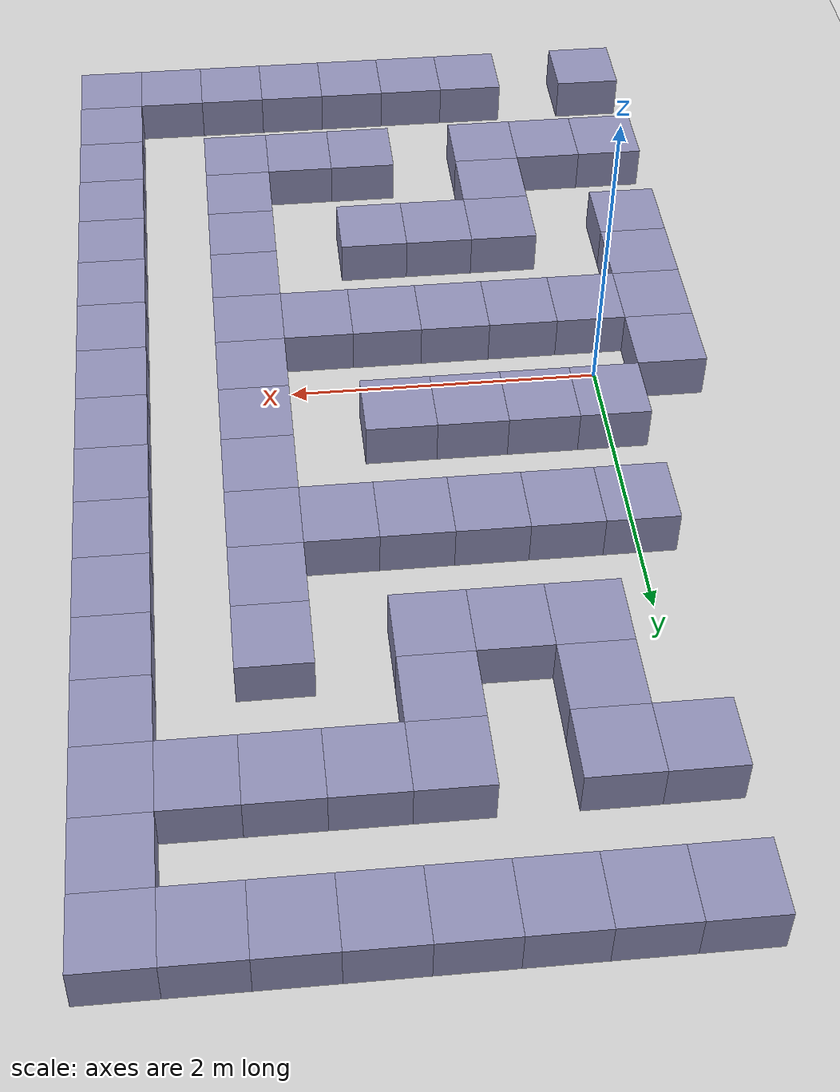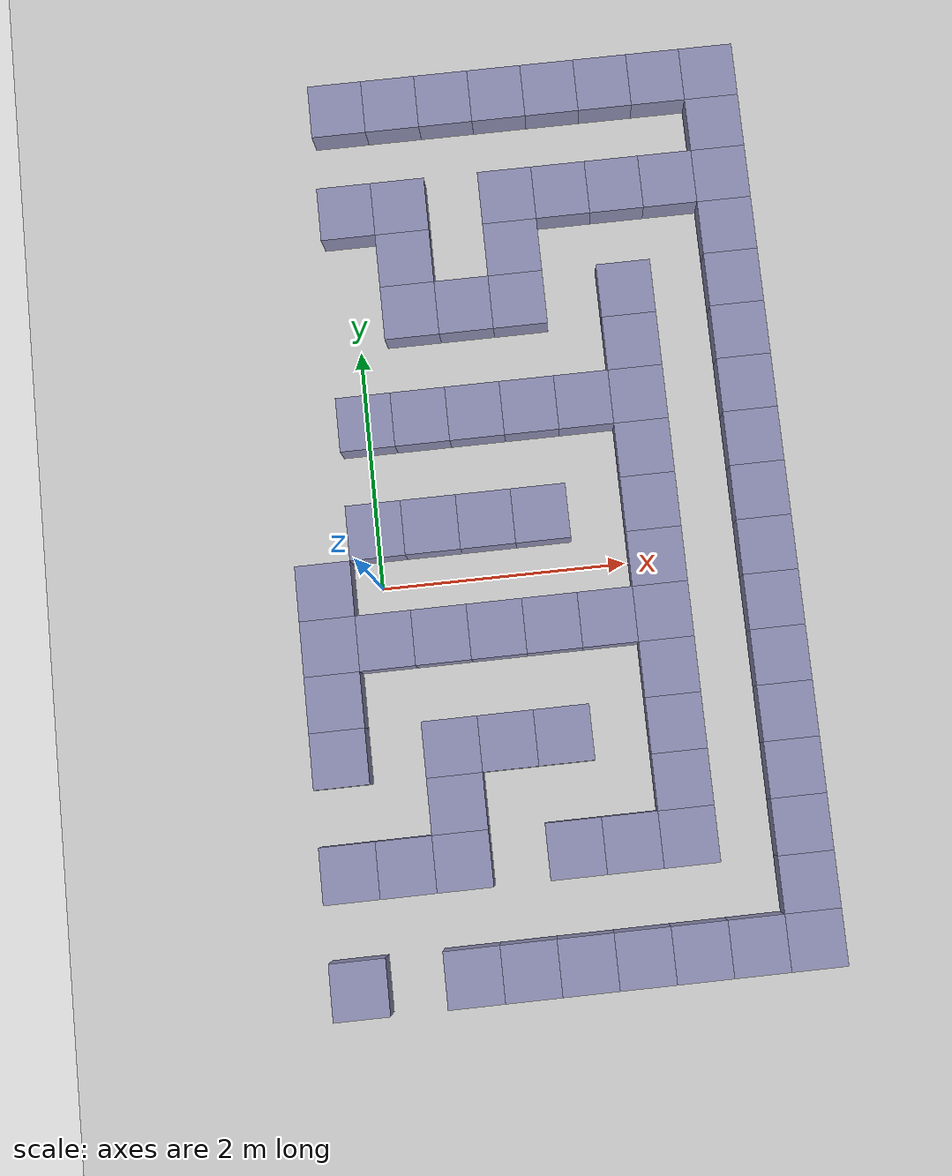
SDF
<sdf version="1.6">
 <world name="maze">
  <include><uri>model://ground_plane</uri></include>
  <include><uri>model://sun</uri></include>
  <model name="mw9">
   <static>true</static>
   <pose>0.0000 4.0500 0.1500 0 0 0</pose>
   <link name="link">
    <collision name="c"><geometry><box><size>0.45 0.45 0.3</size></box></geometry></collision>
    <visual name="v">
     <geometry><box><size>0.45 0.45 0.3</size></box></geometry>
     <material><ambient>0.55 0.55 0.7 1</ambient></material>
    </visual>
   </link>
  </model>
  <model name="mw10">
   <static>true</static>
   <pose>0.4500 4.0500 0.1500 0 0 0</pose>
   <link name="link">
    <collision name="c"><geometry><box><size>0.45 0.45 0.3</size></box></geometry></collision>
    <visual name="v">
     <geometry><box><size>0.45 0.45 0.3</size></box></geometry>
     <material><ambient>0.55 0.55 0.7 1</ambient></material>
    </visual>
   </link>
  </model>
  <model name="mw11">
   <static>true</static>
   <pose>0.9000 4.0500 0.1500 0 0 0</pose>
   <link name="link">
    <collision name="c"><geometry><box><size>0.45 0.45 0.3</size></box></geometry></collision>
    <visual name="v">
     <geometry><box><size>0.45 0.45 0.3</size></box></geometry>
     <material><ambient>0.55 0.55 0.7 1</ambient></material>
    </visual>
   </link>
  </model>
  <model name="mw12">
   <static>true</static>
   <pose>1.3500 4.0500 0.1500 0 0 0</pose>
   <link name="link">
    <collision name="c"><geometry><box><size>0.45 0.45 0.3</size></box></geometry></collision>
    <visual name="v">
     <geometry><box><size>0.45 0.45 0.3</size></box></geometry>
     <material><ambient>0.55 0.55 0.7 1</ambient></material>
    </visual>
   </link>
  </model>
  <model name="mw13">
   <static>true</static>
   <pose>1.8000 4.0500 0.1500 0 0 0</pose>
   <link name="link">
    <collision name="c"><geometry><box><size>0.45 0.45 0.3</size></box></geometry></collision>
    <visual name="v">
     <geometry><box><size>0.45 0.45 0.3</size></box></geometry>
     <material><ambient>0.55 0.55 0.7 1</ambient></material>
    </visual>
   </link>
  </model>
  <model name="mw14">
   <static>true</static>
   <pose>2.2500 4.0500 0.1500 0 0 0</pose>
   <link name="link">
    <collision name="c"><geometry><box><size>0.45 0.45 0.3</size></box></geometry></collision>
    <visual name="v">
     <geometry><box><size>0.45 0.45 0.3</size></box></geometry>
     <material><ambient>0.55 0.55 0.7 1</ambient></material>
    </visual>
   </link>
  </model>
  <model name="mw15">
   <static>true</static>
   <pose>2.7000 4.0500 0.1500 0 0 0</pose>
   <link name="link">
    <collision name="c"><geometry><box><size>0.45 0.45 0.3</size></box></geometry></collision>
    <visual name="v">
     <geometry><box><size>0.45 0.45 0.3</size></box></geometry>
     <material><ambient>0.55 0.55 0.7 1</ambient></material>
    </visual>
   </link>
  </model>
  <model name="mw16">
   <static>true</static>
   <pose>3.1500 4.0500 0.1500 0 0 0</pose>
   <link name="link">
    <collision name="c"><geometry><box><size>0.45 0.45 0.3</size></box></geometry></collision>
    <visual name="v">
     <geometry><box><size>0.45 0.45 0.3</size></box></geometry>
     <material><ambient>0.55 0.55 0.7 1</ambient></material>
    </visual>
   </link>
  </model>
  <model name="mw19">
   <static>true</static>
   <pose>3.1500 3.6000 0.1500 0 0 0</pose>
   <link name="link">
    <collision name="c"><geometry><box><size>0.45 0.45 0.3</size></box></geometry></collision>
    <visual name="v">
     <geometry><box><size>0.45 0.45 0.3</size></box></geometry>
     <material><ambient>0.55 0.55 0.7 1</ambient></material>
    </visual>
   </link>
  </model>
  <model name="mw25">
   <static>true</static>
   <pose>0.0000 3.1500 0.1500 0 0 0</pose>
   <link name="link">
    <collision name="c"><geometry><box><size>0.45 0.45 0.3</size></box></geometry></collision>
    <visual name="v">
     <geometry><box><size>0.45 0.45 0.3</size></box></geometry>
     <material><ambient>0.55 0.55 0.7 1</ambient></material>
    </visual>
   </link>
  </model>
  <model name="mw26">
   <static>true</static>
   <pose>0.4500 3.1500 0.1500 0 0 0</pose>
   <link name="link">
    <collision name="c"><geometry><box><size>0.45 0.45 0.3</size></box></geometry></collision>
    <visual name="v">
     <geometry><box><size>0.45 0.45 0.3</size></box></geometry>
     <material><ambient>0.55 0.55 0.7 1</ambient></material>
    </visual>
   </link>
  </model>
  <model name="mw27">
   <static>true</static>
   <pose>1.3500 3.1500 0.1500 0 0 0</pose>
   <link name="link">
    <collision name="c"><geometry><box><size>0.45 0.45 0.3</size></box></geometry></collision>
    <visual name="v">
     <geometry><box><size>0.45 0.45 0.3</size></box></geometry>
     <material><ambient>0.55 0.55 0.7 1</ambient></material>
    </visual>
   </link>
  </model>
  <model name="mw28">
   <static>true</static>
   <pose>1.8000 3.1500 0.1500 0 0 0</pose>
   <link name="link">
    <collision name="c"><geometry><box><size>0.45 0.45 0.3</size></box></geometry></collision>
    <visual name="v">
     <geometry><box><size>0.45 0.45 0.3</size></box></geometry>
     <material><ambient>0.55 0.55 0.7 1</ambient></material>
    </visual>
   </link>
  </model>
  <model name="mw29">
   <static>true</static>
   <pose>2.2500 3.1500 0.1500 0 0 0</pose>
   <link name="link">
    <collision name="c"><geometry><box><size>0.45 0.45 0.3</size></box></geometry></collision>
    <visual name="v">
     <geometry><box><size>0.45 0.45 0.3</size></box></geometry>
     <material><ambient>0.55 0.55 0.7 1</ambient></material>
    </visual>
   </link>
  </model>
  <model name="mw30">
   <static>true</static>
   <pose>2.7000 3.1500 0.1500 0 0 0</pose>
   <link name="link">
    <collision name="c"><geometry><box><size>0.45 0.45 0.3</size></box></geometry></collision>
    <visual name="v">
     <geometry><box><size>0.45 0.45 0.3</size></box></geometry>
     <material><ambient>0.55 0.55 0.7 1</ambient></material>
    </visual>
   </link>
  </model>
  <model name="mw31">
   <static>true</static>
   <pose>3.1500 3.1500 0.1500 0 0 0</pose>
   <link name="link">
    <collision name="c"><geometry><box><size>0.45 0.45 0.3</size></box></geometry></collision>
    <visual name="v">
     <geometry><box><size>0.45 0.45 0.3</size></box></geometry>
     <material><ambient>0.55 0.55 0.7 1</ambient></material>
    </visual>
   </link>
  </model>
  <model name="mw35">
   <static>true</static>
   <pose>0.4500 2.7000 0.1500 0 0 0</pose>
   <link name="link">
    <collision name="c"><geometry><box><size>0.45 0.45 0.3</size></box></geometry></collision>
    <visual name="v">
     <geometry><box><size>0.45 0.45 0.3</size></box></geometry>
     <material><ambient>0.55 0.55 0.7 1</ambient></material>
    </visual>
   </link>
  </model>
  <model name="mw36">
   <static>true</static>
   <pose>1.3500 2.7000 0.1500 0 0 0</pose>
   <link name="link">
    <collision name="c"><geometry><box><size>0.45 0.45 0.3</size></box></geometry></collision>
    <visual name="v">
     <geometry><box><size>0.45 0.45 0.3</size></box></geometry>
     <material><ambient>0.55 0.55 0.7 1</ambient></material>
    </visual>
   </link>
  </model>
  <model name="mw37">
   <static>true</static>
   <pose>3.1500 2.7000 0.1500 0 0 0</pose>
   <link name="link">
    <collision name="c"><geometry><box><size>0.45 0.45 0.3</size></box></geometry></collision>
    <visual name="v">
     <geometry><box><size>0.45 0.45 0.3</size></box></geometry>
     <material><ambient>0.55 0.55 0.7 1</ambient></material>
    </visual>
   </link>
  </model>
  <model name="mw46">
   <static>true</static>
   <pose>0.4500 2.2500 0.1500 0 0 0</pose>
   <link name="link">
    <collision name="c"><geometry><box><size>0.45 0.45 0.3</size></box></geometry></collision>
    <visual name="v">
     <geometry><box><size>0.45 0.45 0.3</size></box></geometry>
     <material><ambient>0.55 0.55 0.7 1</ambient></material>
    </visual>
   </link>
  </model>
  <model name="mw47">
   <static>true</static>
   <pose>0.9000 2.2500 0.1500 0 0 0</pose>
   <link name="link">
    <collision name="c"><geometry><box><size>0.45 0.45 0.3</size></box></geometry></collision>
    <visual name="v">
     <geometry><box><size>0.45 0.45 0.3</size></box></geometry>
     <material><ambient>0.55 0.55 0.7 1</ambient></material>
    </visual>
   </link>
  </model>
  <model name="mw48">
   <static>true</static>
   <pose>1.3500 2.2500 0.1500 0 0 0</pose>
   <link name="link">
    <collision name="c"><geometry><box><size>0.45 0.45 0.3</size></box></geometry></collision>
    <visual name="v">
     <geometry><box><size>0.45 0.45 0.3</size></box></geometry>
     <material><ambient>0.55 0.55 0.7 1</ambient></material>
    </visual>
   </link>
  </model>
  <model name="mw49">
   <static>true</static>
   <pose>2.2500 2.2500 0.1500 0 0 0</pose>
   <link name="link">
    <collision name="c"><geometry><box><size>0.45 0.45 0.3</size></box></geometry></collision>
    <visual name="v">
     <geometry><box><size>0.45 0.45 0.3</size></box></geometry>
     <material><ambient>0.55 0.55 0.7 1</ambient></material>
    </visual>
   </link>
  </model>
  <model name="mw50">
   <static>true</static>
   <pose>3.1500 2.2500 0.1500 0 0 0</pose>
   <link name="link">
    <collision name="c"><geometry><box><size>0.45 0.45 0.3</size></box></geometry></collision>
    <visual name="v">
     <geometry><box><size>0.45 0.45 0.3</size></box></geometry>
     <material><ambient>0.55 0.55 0.7 1</ambient></material>
    </visual>
   </link>
  </model>
  <model name="mw53">
   <static>true</static>
   <pose>2.2500 1.8000 0.1500 0 0 0</pose>
   <link name="link">
    <collision name="c"><geometry><box><size>0.45 0.45 0.3</size></box></geometry></collision>
    <visual name="v">
     <geometry><box><size>0.45 0.45 0.3</size></box></geometry>
     <material><ambient>0.55 0.55 0.7 1</ambient></material>
    </visual>
   </link>
  </model>
  <model name="mw54">
   <static>true</static>
   <pose>3.1500 1.8000 0.1500 0 0 0</pose>
   <link name="link">
    <collision name="c"><geometry><box><size>0.45 0.45 0.3</size></box></geometry></collision>
    <visual name="v">
     <geometry><box><size>0.45 0.45 0.3</size></box></geometry>
     <material><ambient>0.55 0.55 0.7 1</ambient></material>
    </visual>
   </link>
  </model>
  <model name="mw63">
   <static>true</static>
   <pose>0.0000 1.3500 0.1500 0 0 0</pose>
   <link name="link">
    <collision name="c"><geometry><box><size>0.45 0.45 0.3</size></box></geometry></collision>
    <visual name="v">
     <geometry><box><size>0.45 0.45 0.3</size></box></geometry>
     <material><ambient>0.55 0.55 0.7 1</ambient></material>
    </visual>
   </link>
  </model>
  <model name="mw64">
   <static>true</static>
   <pose>0.4500 1.3500 0.1500 0 0 0</pose>
   <link name="link">
    <collision name="c"><geometry><box><size>0.45 0.45 0.3</size></box></geometry></collision>
    <visual name="v">
     <geometry><box><size>0.45 0.45 0.3</size></box></geometry>
     <material><ambient>0.55 0.55 0.7 1</ambient></material>
    </visual>
   </link>
  </model>
  <model name="mw65">
   <static>true</static>
   <pose>0.9000 1.3500 0.1500 0 0 0</pose>
   <link name="link">
    <collision name="c"><geometry><box><size>0.45 0.45 0.3</size></box></geometry></collision>
    <visual name="v">
     <geometry><box><size>0.45 0.45 0.3</size></box></geometry>
     <material><ambient>0.55 0.55 0.7 1</ambient></material>
    </visual>
   </link>
  </model>
  <model name="mw66">
   <static>true</static>
   <pose>1.3500 1.3500 0.1500 0 0 0</pose>
   <link name="link">
    <collision name="c"><geometry><box><size>0.45 0.45 0.3</size></box></geometry></collision>
    <visual name="v">
     <geometry><box><size>0.45 0.45 0.3</size></box></geometry>
     <material><ambient>0.55 0.55 0.7 1</ambient></material>
    </visual>
   </link>
  </model>
  <model name="mw67">
   <static>true</static>
   <pose>1.8000 1.3500 0.1500 0 0 0</pose>
   <link name="link">
    <collision name="c"><geometry><box><size>0.45 0.45 0.3</size></box></geometry></collision>
    <visual name="v">
     <geometry><box><size>0.45 0.45 0.3</size></box></geometry>
     <material><ambient>0.55 0.55 0.7 1</ambient></material>
    </visual>
   </link>
  </model>
  <model name="mw68">
   <static>true</static>
   <pose>2.2500 1.3500 0.1500 0 0 0</pose>
   <link name="link">
    <collision name="c"><geometry><box><size>0.45 0.45 0.3</size></box></geometry></collision>
    <visual name="v">
     <geometry><box><size>0.45 0.45 0.3</size></box></geometry>
     <material><ambient>0.55 0.55 0.7 1</ambient></material>
    </visual>
   </link>
  </model>
  <model name="mw69">
   <static>true</static>
   <pose>3.1500 1.3500 0.1500 0 0 0</pose>
   <link name="link">
    <collision name="c"><geometry><box><size>0.45 0.45 0.3</size></box></geometry></collision>
    <visual name="v">
     <geometry><box><size>0.45 0.45 0.3</size></box></geometry>
     <material><ambient>0.55 0.55 0.7 1</ambient></material>
    </visual>
   </link>
  </model>
  <model name="mw73">
   <static>true</static>
   <pose>2.2500 0.9000 0.1500 0 0 0</pose>
   <link name="link">
    <collision name="c"><geometry><box><size>0.45 0.45 0.3</size></box></geometry></collision>
    <visual name="v">
     <geometry><box><size>0.45 0.45 0.3</size></box></geometry>
     <material><ambient>0.55 0.55 0.7 1</ambient></material>
    </visual>
   </link>
  </model>
  <model name="mw74">
   <static>true</static>
   <pose>3.1500 0.9000 0.1500 0 0 0</pose>
   <link name="link">
    <collision name="c"><geometry><box><size>0.45 0.45 0.3</size></box></geometry></collision>
    <visual name="v">
     <geometry><box><size>0.45 0.45 0.3</size></box></geometry>
     <material><ambient>0.55 0.55 0.7 1</ambient></material>
    </visual>
   </link>
  </model>
  <model name="mw81">
   <static>true</static>
   <pose>0.0000 0.4500 0.1500 0 0 0</pose>
   <link name="link">
    <collision name="c"><geometry><box><size>0.45 0.45 0.3</size></box></geometry></collision>
    <visual name="v">
     <geometry><box><size>0.45 0.45 0.3</size></box></geometry>
     <material><ambient>0.55 0.55 0.7 1</ambient></material>
    </visual>
   </link>
  </model>
  <model name="mw82">
   <static>true</static>
   <pose>0.4500 0.4500 0.1500 0 0 0</pose>
   <link name="link">
    <collision name="c"><geometry><box><size>0.45 0.45 0.3</size></box></geometry></collision>
    <visual name="v">
     <geometry><box><size>0.45 0.45 0.3</size></box></geometry>
     <material><ambient>0.55 0.55 0.7 1</ambient></material>
    </visual>
   </link>
  </model>
  <model name="mw83">
   <static>true</static>
   <pose>0.9000 0.4500 0.1500 0 0 0</pose>
   <link name="link">
    <collision name="c"><geometry><box><size>0.45 0.45 0.3</size></box></geometry></collision>
    <visual name="v">
     <geometry><box><size>0.45 0.45 0.3</size></box></geometry>
     <material><ambient>0.55 0.55 0.7 1</ambient></material>
    </visual>
   </link>
  </model>
  <model name="mw84">
   <static>true</static>
   <pose>1.3500 0.4500 0.1500 0 0 0</pose>
   <link name="link">
    <collision name="c"><geometry><box><size>0.45 0.45 0.3</size></box></geometry></collision>
    <visual name="v">
     <geometry><box><size>0.45 0.45 0.3</size></box></geometry>
     <material><ambient>0.55 0.55 0.7 1</ambient></material>
    </visual>
   </link>
  </model>
  <model name="mw85">
   <static>true</static>
   <pose>2.2500 0.4500 0.1500 0 0 0</pose>
   <link name="link">
    <collision name="c"><geometry><box><size>0.45 0.45 0.3</size></box></geometry></collision>
    <visual name="v">
     <geometry><box><size>0.45 0.45 0.3</size></box></geometry>
     <material><ambient>0.55 0.55 0.7 1</ambient></material>
    </visual>
   </link>
  </model>
  <model name="mw86">
   <static>true</static>
   <pose>3.1500 0.4500 0.1500 0 0 0</pose>
   <link name="link">
    <collision name="c"><geometry><box><size>0.45 0.45 0.3</size></box></geometry></collision>
    <visual name="v">
     <geometry><box><size>0.45 0.45 0.3</size></box></geometry>
     <material><ambient>0.55 0.55 0.7 1</ambient></material>
    </visual>
   </link>
  </model>
  <model name="mw90">
   <static>true</static>
   <pose>-0.4500 0.0000 0.1500 0 0 0</pose>
   <link name="link">
    <collision name="c"><geometry><box><size>0.45 0.45 0.3</size></box></geometry></collision>
    <visual name="v">
     <geometry><box><size>0.45 0.45 0.3</size></box></geometry>
     <material><ambient>0.55 0.55 0.7 1</ambient></material>
    </visual>
   </link>
  </model>
  <model name="mw91">
   <static>true</static>
   <pose>2.2500 0.0000 0.1500 0 0 0</pose>
   <link name="link">
    <collision name="c"><geometry><box><size>0.45 0.45 0.3</size></box></geometry></collision>
    <visual name="v">
     <geometry><box><size>0.45 0.45 0.3</size></box></geometry>
     <material><ambient>0.55 0.55 0.7 1</ambient></material>
    </visual>
   </link>
  </model>
  <model name="mw92">
   <static>true</static>
   <pose>3.1500 0.0000 0.1500 0 0 0</pose>
   <link name="link">
    <collision name="c"><geometry><box><size>0.45 0.45 0.3</size></box></geometry></collision>
    <visual name="v">
     <geometry><box><size>0.45 0.45 0.3</size></box></geometry>
     <material><ambient>0.55 0.55 0.7 1</ambient></material>
    </visual>
   </link>
  </model>
  <model name="mw98">
   <static>true</static>
   <pose>-0.4500 -0.4500 0.1500 0 0 0</pose>
   <link name="link">
    <collision name="c"><geometry><box><size>0.45 0.45 0.3</size></box></geometry></collision>
    <visual name="v">
     <geometry><box><size>0.45 0.45 0.3</size></box></geometry>
     <material><ambient>0.55 0.55 0.7 1</ambient></material>
    </visual>
   </link>
  </model>
  <model name="mw99">
   <static>true</static>
   <pose>0.0000 -0.4500 0.1500 0 0 0</pose>
   <link name="link">
    <collision name="c"><geometry><box><size>0.45 0.45 0.3</size></box></geometry></collision>
    <visual name="v">
     <geometry><box><size>0.45 0.45 0.3</size></box></geometry>
     <material><ambient>0.55 0.55 0.7 1</ambient></material>
    </visual>
   </link>
  </model>
  <model name="mw100">
   <static>true</static>
   <pose>0.4500 -0.4500 0.1500 0 0 0</pose>
   <link name="link">
    <collision name="c"><geometry><box><size>0.45 0.45 0.3</size></box></geometry></collision>
    <visual name="v">
     <geometry><box><size>0.45 0.45 0.3</size></box></geometry>
     <material><ambient>0.55 0.55 0.7 1</ambient></material>
    </visual>
   </link>
  </model>
  <model name="mw101">
   <static>true</static>
   <pose>0.9000 -0.4500 0.1500 0 0 0</pose>
   <link name="link">
    <collision name="c"><geometry><box><size>0.45 0.45 0.3</size></box></geometry></collision>
    <visual name="v">
     <geometry><box><size>0.45 0.45 0.3</size></box></geometry>
     <material><ambient>0.55 0.55 0.7 1</ambient></material>
    </visual>
   </link>
  </model>
  <model name="mw102">
   <static>true</static>
   <pose>1.3500 -0.4500 0.1500 0 0 0</pose>
   <link name="link">
    <collision name="c"><geometry><box><size>0.45 0.45 0.3</size></box></geometry></collision>
    <visual name="v">
     <geometry><box><size>0.45 0.45 0.3</size></box></geometry>
     <material><ambient>0.55 0.55 0.7 1</ambient></material>
    </visual>
   </link>
  </model>
  <model name="mw103">
   <static>true</static>
   <pose>1.8000 -0.4500 0.1500 0 0 0</pose>
   <link name="link">
    <collision name="c"><geometry><box><size>0.45 0.45 0.3</size></box></geometry></collision>
    <visual name="v">
     <geometry><box><size>0.45 0.45 0.3</size></box></geometry>
     <material><ambient>0.55 0.55 0.7 1</ambient></material>
    </visual>
   </link>
  </model>
  <model name="mw104">
   <static>true</static>
   <pose>2.2500 -0.4500 0.1500 0 0 0</pose>
   <link name="link">
    <collision name="c"><geometry><box><size>0.45 0.45 0.3</size></box></geometry></collision>
    <visual name="v">
     <geometry><box><size>0.45 0.45 0.3</size></box></geometry>
     <material><ambient>0.55 0.55 0.7 1</ambient></material>
    </visual>
   </link>
  </model>
  <model name="mw105">
   <static>true</static>
   <pose>3.1500 -0.4500 0.1500 0 0 0</pose>
   <link name="link">
    <collision name="c"><geometry><box><size>0.45 0.45 0.3</size></box></geometry></collision>
    <visual name="v">
     <geometry><box><size>0.45 0.45 0.3</size></box></geometry>
     <material><ambient>0.55 0.55 0.7 1</ambient></material>
    </visual>
   </link>
  </model>
  <model name="mw108">
   <static>true</static>
   <pose>-0.4500 -0.9000 0.1500 0 0 0</pose>
   <link name="link">
    <collision name="c"><geometry><box><size>0.45 0.45 0.3</size></box></geometry></collision>
    <visual name="v">
     <geometry><box><size>0.45 0.45 0.3</size></box></geometry>
     <material><ambient>0.55 0.55 0.7 1</ambient></material>
    </visual>
   </link>
  </model>
  <model name="mw109">
   <static>true</static>
   <pose>2.2500 -0.9000 0.1500 0 0 0</pose>
   <link name="link">
    <collision name="c"><geometry><box><size>0.45 0.45 0.3</size></box></geometry></collision>
    <visual name="v">
     <geometry><box><size>0.45 0.45 0.3</size></box></geometry>
     <material><ambient>0.55 0.55 0.7 1</ambient></material>
    </visual>
   </link>
  </model>
  <model name="mw110">
   <static>true</static>
   <pose>3.1500 -0.9000 0.1500 0 0 0</pose>
   <link name="link">
    <collision name="c"><geometry><box><size>0.45 0.45 0.3</size></box></geometry></collision>
    <visual name="v">
     <geometry><box><size>0.45 0.45 0.3</size></box></geometry>
     <material><ambient>0.55 0.55 0.7 1</ambient></material>
    </visual>
   </link>
  </model>
  <model name="mw118">
   <static>true</static>
   <pose>-0.4500 -1.3500 0.1500 0 0 0</pose>
   <link name="link">
    <collision name="c"><geometry><box><size>0.45 0.45 0.3</size></box></geometry></collision>
    <visual name="v">
     <geometry><box><size>0.45 0.45 0.3</size></box></geometry>
     <material><ambient>0.55 0.55 0.7 1</ambient></material>
    </visual>
   </link>
  </model>
  <model name="mw119">
   <static>true</static>
   <pose>0.4500 -1.3500 0.1500 0 0 0</pose>
   <link name="link">
    <collision name="c"><geometry><box><size>0.45 0.45 0.3</size></box></geometry></collision>
    <visual name="v">
     <geometry><box><size>0.45 0.45 0.3</size></box></geometry>
     <material><ambient>0.55 0.55 0.7 1</ambient></material>
    </visual>
   </link>
  </model>
  <model name="mw120">
   <static>true</static>
   <pose>0.9000 -1.3500 0.1500 0 0 0</pose>
   <link name="link">
    <collision name="c"><geometry><box><size>0.45 0.45 0.3</size></box></geometry></collision>
    <visual name="v">
     <geometry><box><size>0.45 0.45 0.3</size></box></geometry>
     <material><ambient>0.55 0.55 0.7 1</ambient></material>
    </visual>
   </link>
  </model>
  <model name="mw121">
   <static>true</static>
   <pose>1.3500 -1.3500 0.1500 0 0 0</pose>
   <link name="link">
    <collision name="c"><geometry><box><size>0.45 0.45 0.3</size></box></geometry></collision>
    <visual name="v">
     <geometry><box><size>0.45 0.45 0.3</size></box></geometry>
     <material><ambient>0.55 0.55 0.7 1</ambient></material>
    </visual>
   </link>
  </model>
  <model name="mw122">
   <static>true</static>
   <pose>2.2500 -1.3500 0.1500 0 0 0</pose>
   <link name="link">
    <collision name="c"><geometry><box><size>0.45 0.45 0.3</size></box></geometry></collision>
    <visual name="v">
     <geometry><box><size>0.45 0.45 0.3</size></box></geometry>
     <material><ambient>0.55 0.55 0.7 1</ambient></material>
    </visual>
   </link>
  </model>
  <model name="mw123">
   <static>true</static>
   <pose>3.1500 -1.3500 0.1500 0 0 0</pose>
   <link name="link">
    <collision name="c"><geometry><box><size>0.45 0.45 0.3</size></box></geometry></collision>
    <visual name="v">
     <geometry><box><size>0.45 0.45 0.3</size></box></geometry>
     <material><ambient>0.55 0.55 0.7 1</ambient></material>
    </visual>
   </link>
  </model>
  <model name="mw126">
   <static>true</static>
   <pose>0.4500 -1.8000 0.1500 0 0 0</pose>
   <link name="link">
    <collision name="c"><geometry><box><size>0.45 0.45 0.3</size></box></geometry></collision>
    <visual name="v">
     <geometry><box><size>0.45 0.45 0.3</size></box></geometry>
     <material><ambient>0.55 0.55 0.7 1</ambient></material>
    </visual>
   </link>
  </model>
  <model name="mw127">
   <static>true</static>
   <pose>2.2500 -1.8000 0.1500 0 0 0</pose>
   <link name="link">
    <collision name="c"><geometry><box><size>0.45 0.45 0.3</size></box></geometry></collision>
    <visual name="v">
     <geometry><box><size>0.45 0.45 0.3</size></box></geometry>
     <material><ambient>0.55 0.55 0.7 1</ambient></material>
    </visual>
   </link>
  </model>
  <model name="mw128">
   <static>true</static>
   <pose>3.1500 -1.8000 0.1500 0 0 0</pose>
   <link name="link">
    <collision name="c"><geometry><box><size>0.45 0.45 0.3</size></box></geometry></collision>
    <visual name="v">
     <geometry><box><size>0.45 0.45 0.3</size></box></geometry>
     <material><ambient>0.55 0.55 0.7 1</ambient></material>
    </visual>
   </link>
  </model>
  <model name="mw136">
   <static>true</static>
   <pose>-0.4500 -2.2500 0.1500 0 0 0</pose>
   <link name="link">
    <collision name="c"><geometry><box><size>0.45 0.45 0.3</size></box></geometry></collision>
    <visual name="v">
     <geometry><box><size>0.45 0.45 0.3</size></box></geometry>
     <material><ambient>0.55 0.55 0.7 1</ambient></material>
    </visual>
   </link>
  </model>
  <model name="mw137">
   <static>true</static>
   <pose>0.0000 -2.2500 0.1500 0 0 0</pose>
   <link name="link">
    <collision name="c"><geometry><box><size>0.45 0.45 0.3</size></box></geometry></collision>
    <visual name="v">
     <geometry><box><size>0.45 0.45 0.3</size></box></geometry>
     <material><ambient>0.55 0.55 0.7 1</ambient></material>
    </visual>
   </link>
  </model>
  <model name="mw138">
   <static>true</static>
   <pose>0.4500 -2.2500 0.1500 0 0 0</pose>
   <link name="link">
    <collision name="c"><geometry><box><size>0.45 0.45 0.3</size></box></geometry></collision>
    <visual name="v">
     <geometry><box><size>0.45 0.45 0.3</size></box></geometry>
     <material><ambient>0.55 0.55 0.7 1</ambient></material>
    </visual>
   </link>
  </model>
  <model name="mw139">
   <static>true</static>
   <pose>1.3500 -2.2500 0.1500 0 0 0</pose>
   <link name="link">
    <collision name="c"><geometry><box><size>0.45 0.45 0.3</size></box></geometry></collision>
    <visual name="v">
     <geometry><box><size>0.45 0.45 0.3</size></box></geometry>
     <material><ambient>0.55 0.55 0.7 1</ambient></material>
    </visual>
   </link>
  </model>
  <model name="mw140">
   <static>true</static>
   <pose>1.8000 -2.2500 0.1500 0 0 0</pose>
   <link name="link">
    <collision name="c"><geometry><box><size>0.45 0.45 0.3</size></box></geometry></collision>
    <visual name="v">
     <geometry><box><size>0.45 0.45 0.3</size></box></geometry>
     <material><ambient>0.55 0.55 0.7 1</ambient></material>
    </visual>
   </link>
  </model>
  <model name="mw141">
   <static>true</static>
   <pose>2.2500 -2.2500 0.1500 0 0 0</pose>
   <link name="link">
    <collision name="c"><geometry><box><size>0.45 0.45 0.3</size></box></geometry></collision>
    <visual name="v">
     <geometry><box><size>0.45 0.45 0.3</size></box></geometry>
     <material><ambient>0.55 0.55 0.7 1</ambient></material>
    </visual>
   </link>
  </model>
  <model name="mw142">
   <static>true</static>
   <pose>3.1500 -2.2500 0.1500 0 0 0</pose>
   <link name="link">
    <collision name="c"><geometry><box><size>0.45 0.45 0.3</size></box></geometry></collision>
    <visual name="v">
     <geometry><box><size>0.45 0.45 0.3</size></box></geometry>
     <material><ambient>0.55 0.55 0.7 1</ambient></material>
    </visual>
   </link>
  </model>
  <model name="mw144">
   <static>true</static>
   <pose>3.1500 -2.7000 0.1500 0 0 0</pose>
   <link name="link">
    <collision name="c"><geometry><box><size>0.45 0.45 0.3</size></box></geometry></collision>
    <visual name="v">
     <geometry><box><size>0.45 0.45 0.3</size></box></geometry>
     <material><ambient>0.55 0.55 0.7 1</ambient></material>
    </visual>
   </link>
  </model>
  <model name="mw153">
   <static>true</static>
   <pose>-0.4500 -3.1500 0.1500 0 0 0</pose>
   <link name="link">
    <collision name="c"><geometry><box><size>0.45 0.45 0.3</size></box></geometry></collision>
    <visual name="v">
     <geometry><box><size>0.45 0.45 0.3</size></box></geometry>
     <material><ambient>0.55 0.55 0.7 1</ambient></material>
    </visual>
   </link>
  </model>
  <model name="mw154">
   <static>true</static>
   <pose>0.4500 -3.1500 0.1500 0 0 0</pose>
   <link name="link">
    <collision name="c"><geometry><box><size>0.45 0.45 0.3</size></box></geometry></collision>
    <visual name="v">
     <geometry><box><size>0.45 0.45 0.3</size></box></geometry>
     <material><ambient>0.55 0.55 0.7 1</ambient></material>
    </visual>
   </link>
  </model>
  <model name="mw155">
   <static>true</static>
   <pose>0.9000 -3.1500 0.1500 0 0 0</pose>
   <link name="link">
    <collision name="c"><geometry><box><size>0.45 0.45 0.3</size></box></geometry></collision>
    <visual name="v">
     <geometry><box><size>0.45 0.45 0.3</size></box></geometry>
     <material><ambient>0.55 0.55 0.7 1</ambient></material>
    </visual>
   </link>
  </model>
  <model name="mw156">
   <static>true</static>
   <pose>1.3500 -3.1500 0.1500 0 0 0</pose>
   <link name="link">
    <collision name="c"><geometry><box><size>0.45 0.45 0.3</size></box></geometry></collision>
    <visual name="v">
     <geometry><box><size>0.45 0.45 0.3</size></box></geometry>
     <material><ambient>0.55 0.55 0.7 1</ambient></material>
    </visual>
   </link>
  </model>
  <model name="mw157">
   <static>true</static>
   <pose>1.8000 -3.1500 0.1500 0 0 0</pose>
   <link name="link">
    <collision name="c"><geometry><box><size>0.45 0.45 0.3</size></box></geometry></collision>
    <visual name="v">
     <geometry><box><size>0.45 0.45 0.3</size></box></geometry>
     <material><ambient>0.55 0.55 0.7 1</ambient></material>
    </visual>
   </link>
  </model>
  <model name="mw158">
   <static>true</static>
   <pose>2.2500 -3.1500 0.1500 0 0 0</pose>
   <link name="link">
    <collision name="c"><geometry><box><size>0.45 0.45 0.3</size></box></geometry></collision>
    <visual name="v">
     <geometry><box><size>0.45 0.45 0.3</size></box></geometry>
     <material><ambient>0.55 0.55 0.7 1</ambient></material>
    </visual>
   </link>
  </model>
  <model name="mw159">
   <static>true</static>
   <pose>2.7000 -3.1500 0.1500 0 0 0</pose>
   <link name="link">
    <collision name="c"><geometry><box><size>0.45 0.45 0.3</size></box></geometry></collision>
    <visual name="v">
     <geometry><box><size>0.45 0.45 0.3</size></box></geometry>
     <material><ambient>0.55 0.55 0.7 1</ambient></material>
    </visual>
   </link>
  </model>
  <model name="mw160">
   <static>true</static>
   <pose>3.1500 -3.1500 0.1500 0 0 0</pose>
   <link name="link">
    <collision name="c"><geometry><box><size>0.45 0.45 0.3</size></box></geometry></collision>
    <visual name="v">
     <geometry><box><size>0.45 0.45 0.3</size></box></geometry>
     <material><ambient>0.55 0.55 0.7 1</ambient></material>
    </visual>
   </link>
  </model>
 </world>
</sdf>
